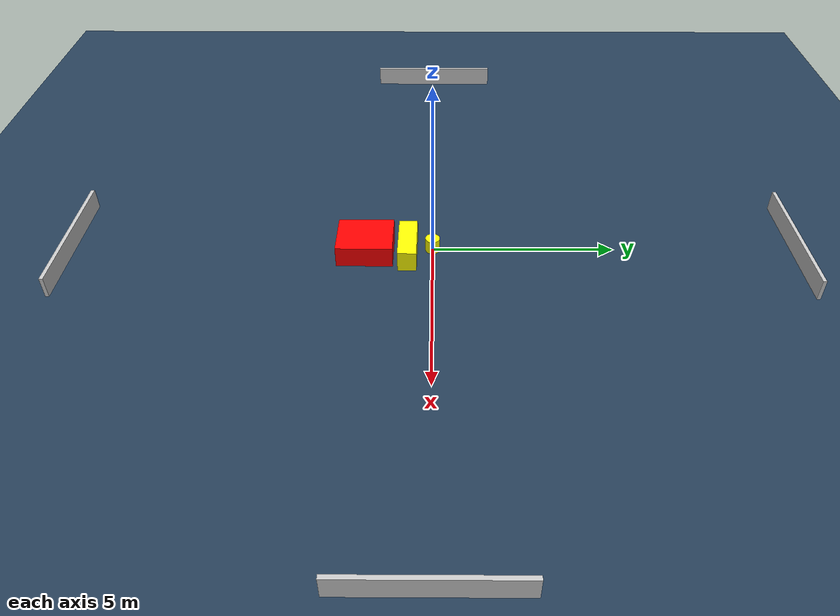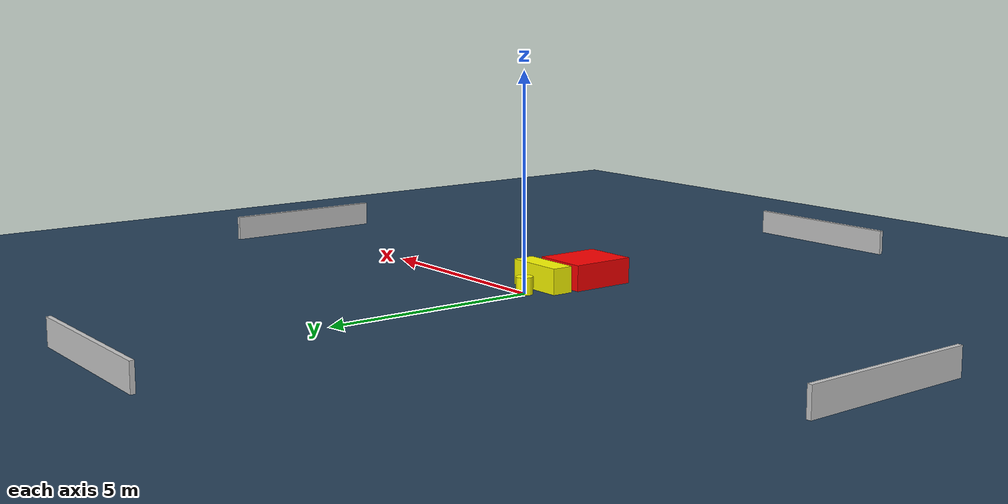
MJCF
<?xml version="1.0" ?>
<mujoco model="generated_environment">
  <option timestep="0.01" integrator="RK4" cone="elliptic"/>
  <default>
    <geom density="1"/>
  </default>
  <asset>
    <texture builtin="gradient" height="3072" name="skybox" rgb1="0.3 0.5 0.7" rgb2="0 0 0" type="skybox" width="512"/>
    <texture builtin="checker" height="300" name="groundplane" rgb1="0.2 0.3 0.4" rgb2="0.1 0.2 0.3" type="2d" width="300"/>
    <material name="groundplane" reflectance="0.2" texrepeat="5 5" texture="groundplane"/>
  </asset>
  <worldbody>
    <light dir="0 0 -1" directional="true" pos="0 0 1.5"/>
    <geom condim="3" friction="0.5 0.005 0.001" material="groundplane" name="floor" pos="0 0 0" size="0 0 0.05" type="plane"/>
    <body name="walls">
      <geom name="wall_1" condim="4" pos="-10.0 0.0 0.3" rgba="0.800000011920929 0.800000011920929 0.800000011920929 1.0" size="0.05 2.0 0.3" type="box"/>
      <geom name="wall_2" condim="4" pos="10.0 0.0 0.3" rgba="0.800000011920929 0.800000011920929 0.800000011920929 1.0" size="0.05 2.0 0.3" type="box"/>
      <geom name="wall_3" condim="4" pos="0.0 -10.0 0.3" rgba="0.800000011920929 0.800000011920929 0.800000011920929 1.0" size="2.0 0.05 0.3" type="box"/>
      <geom name="wall_4" condim="4" pos="0.0 10.0 0.3" rgba="0.800000011920929 0.800000011920929 0.800000011920929 1.0" size="2.0 0.05 0.3" type="box"/>
    </body>
    <body name="robot">
      <joint name="joint_x" type="slide" pos="0 0 0" axis="1 0 0"/>
      <joint name="joint_y" type="slide" pos="0 0 0" axis="0 1 0"/>
      <geom name="robot" type="cylinder" pos="0.0 0.0 0.2" size="0.2 0.2 0.0" mass="5.0" friction="1.0 0.005 0.0001" condim="4" rgba="1.0 1.0 0.0 1.0"/>
    </body>
    <body name="obstacle_1_movable">
      <geom name="obstacle_1_movable" condim="4" pos="0.19214444271984887 -0.6811641598022198 0.3" euler="0 0 359.42493321931886" friction="0.0 0.005 0.001" rgba="1.0 1.0 0.0 1.0" size="0.7284068269096657 0.25471669693426 0.3" type="box" mass="0.1"/>
      <joint type="free"/>
    </body>
    <body name="obstacle_2_static">
      <geom name="obstacle_2_static" condim="4" pos="0.07392439894104448 -1.8479602638195534 0.3" euler="0 0 269.6984879264687" friction="0.0 0.005 0.001" rgba="1.0 0.0 0.0 1.0" size="0.7693911008927596 0.6552200851478807 0.3" type="box"/>
    </body>
  </worldbody>
  <actuator>
    <motor name="actuator_x" joint="joint_x" gear="1" ctrlrange="-1 1"/>
    <motor name="actuator_y" joint="joint_y" gear="1" ctrlrange="-1 1"/>
  </actuator>
</mujoco>
